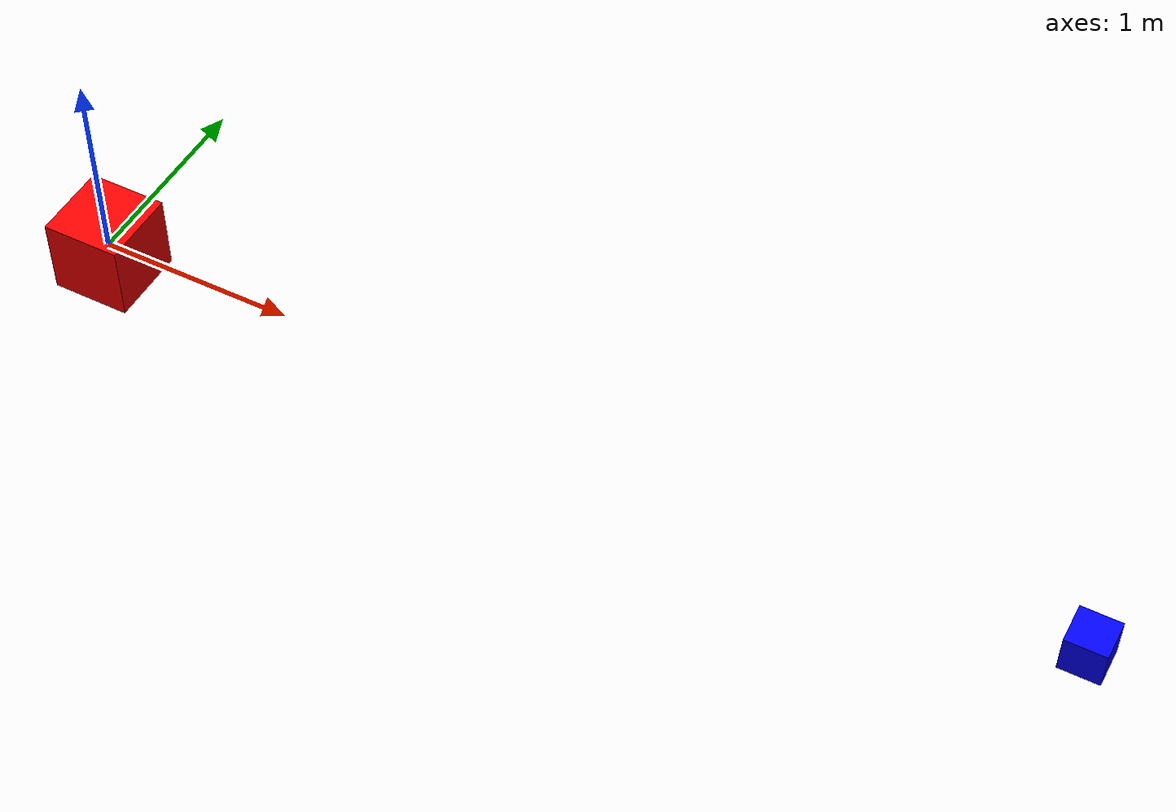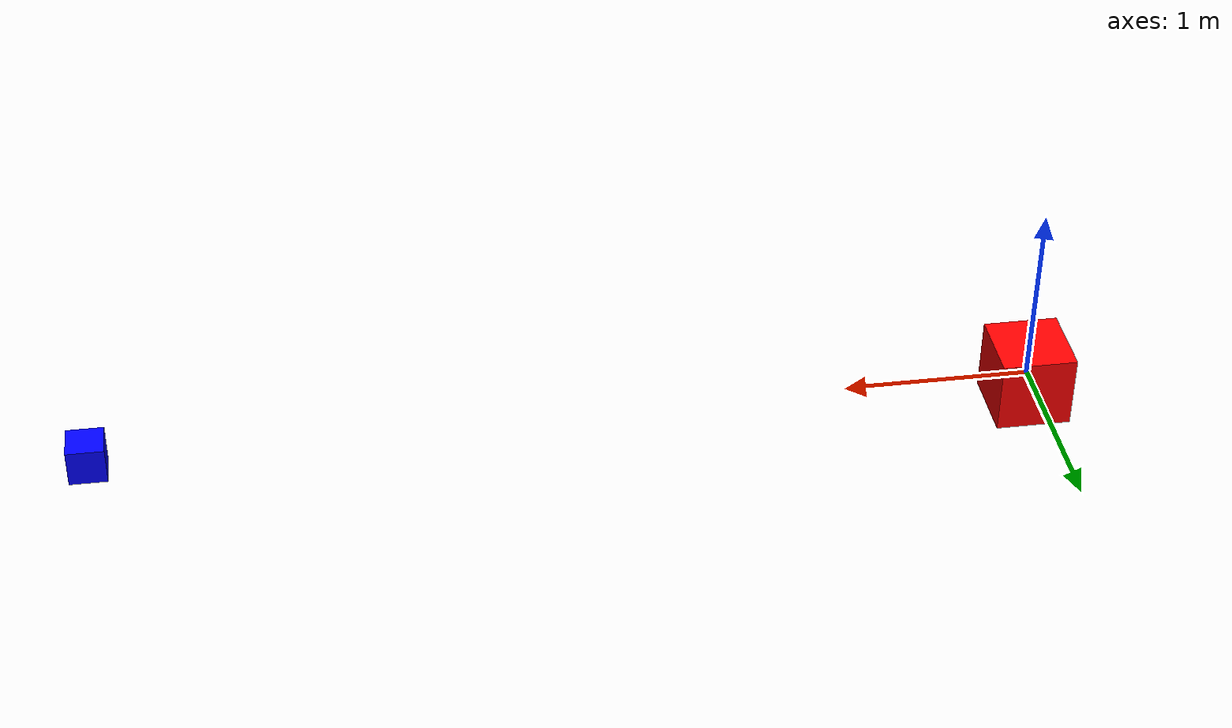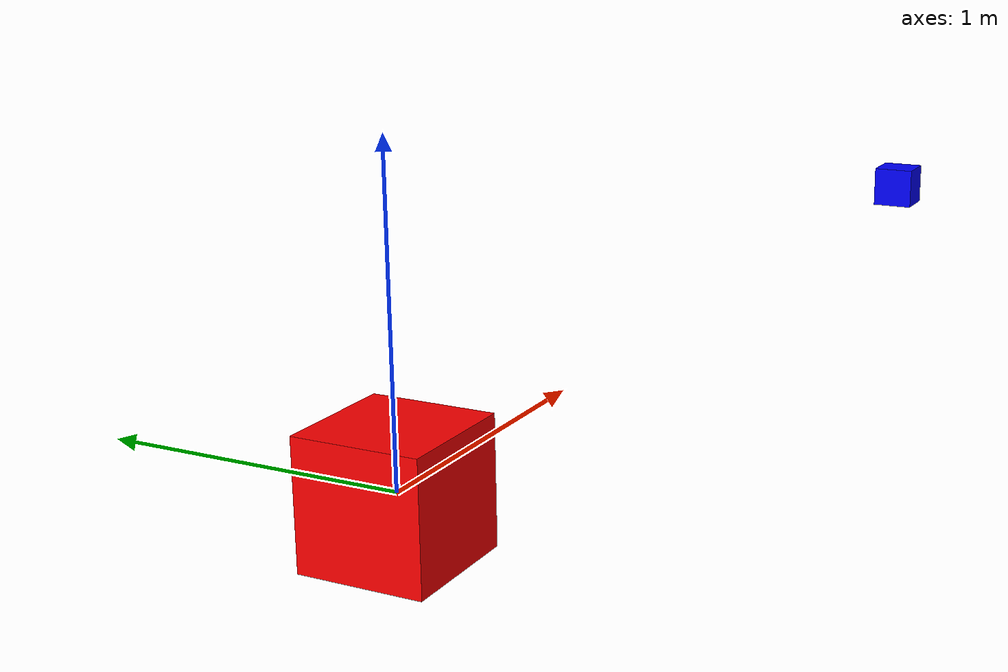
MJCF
<mujoco>
    <option gravity="0 0 0" />

    <asset>
        <texture type="skybox" builtin="gradient" rgb1="0.3 0.5 0.7" rgb2="0 0 0" width="512" height="512"/>
        <texture name="stars" type="cube" builtin="checker" rgb1="1 1 1" rgb2="0 0 0" width="512" height="512" mark="edge" markrgb="1 1 1"/>
        <material name="stars" texture="stars" texrepeat="1 1" texuniform="true" reflectance="0.2"/>
    </asset>

    <worldbody>
        <light diffuse=".5 .5 .5" pos="0 0 3" dir="0 0 -1"/>
        <geom type="plane" size="50 50 0.1" pos="0 0 -10" material="stars"/>

        <body name="agent" pos="5 0 0">
            <joint name="agent_x" type="slide" axis="1 0 0"/>
            <joint name="agent_y" type="slide" axis="0 1 0"/>
            <joint name="agent_z" type="slide" axis="0 0 1"/>
            <geom type="box" size="0.1 0.1 0.1" rgba="0 0 1 1"/>
        </body>

        <body name="target" pos="0 0 0">
            <joint name="target_x" type="slide" axis="1 0 0"/>
            <joint name="target_y" type="slide" axis="0 1 0"/>
            <joint name="target_z" type="slide" axis="0 0 1"/>
            <geom type="box" size="0.2 0.2 0.2" rgba="1 0 0 1"/>
        </body>
    </worldbody>

    <actuator>
        <motor joint="agent_x" ctrlrange="-1 1" />
        <motor joint="agent_y" ctrlrange="-1 1" />
        <motor joint="agent_z" ctrlrange="-1 1" />
    </actuator>
</mujoco>
